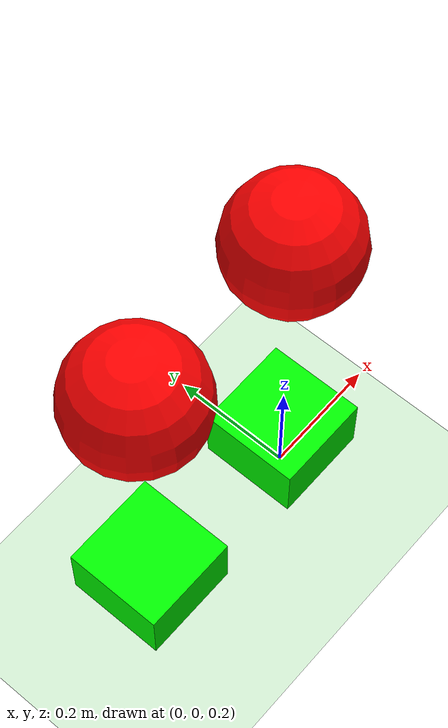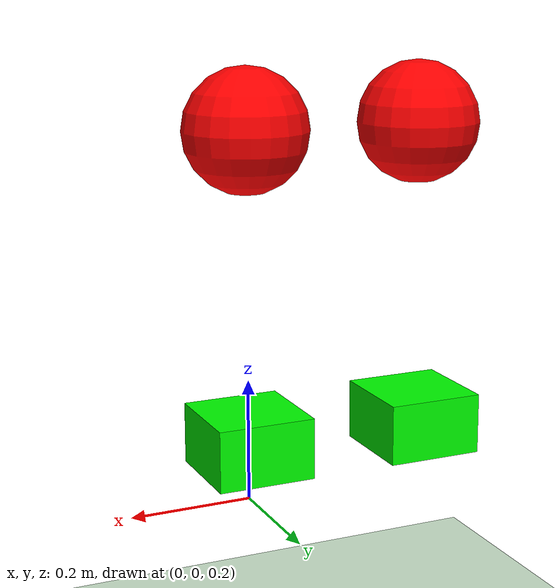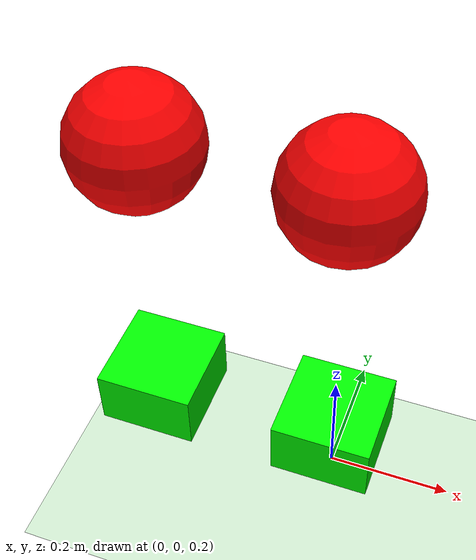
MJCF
<mujoco model="collision_filtering">
  <worldbody>
    <geom name="floor" type="plane" size="1 1 0.1"
        contype="1" conaffinity="2"
        rgba="0.8 0.9 0.8 1"/>

    <!-- box_body_default and sphere_body_default collide with the floor and with each other. -->
    <body name="box_body_default" pos="-0.3 0 0.3">
        <freejoint/>
        <geom name="box_geom_default" type="box" size="0.08 0.08 0.05"
            contype="1" conaffinity="1"
            rgba="0.0 1.0 0.0 1"/>
    </body>
    <body name="sphere_body_default" pos="-0.3 0 0.8">
        <freejoint/>
        <geom name="sphere_geom_default" type="sphere" size="0.1"
            contype="1" conaffinity="1"
            rgba="1.0 0.0 0.0 1"/>
    </body>

    <!-- box_body and sphere_body collide with the floor but do not collide with each other -->
    <body name="box_body" pos="0 0 0.3">
        <freejoint/>
        <geom name="box_geom" type="box" size="0.08 0.08 0.05"
            contype="2" conaffinity="1"
            rgba="0.0 1.0 0.0 1"/>
    </body>
    <body name="sphere_body" pos="0 0 0.8">
        <freejoint/>
        <geom name="sphere_geom" type="sphere" size="0.1"
            contype="2" conaffinity="1"
            rgba="1.0 0.0 0.0 1"/>
    </body>
  </worldbody>
</mujoco>
